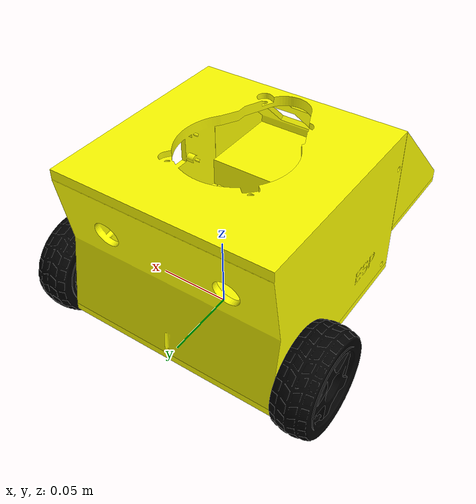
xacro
<?xml version="1.0"?>
<robot xmlns:xacro="http://wiki.ros.org/xacro" name="socks_bot">
  <xacro:arg name="hardware_plugin" default="gz_ros2_control/GazeboSystem"/>
  <xacro:property name="PI" value="3.141592653589793"/>
  <xacro:property name="HALF_PI" value="${PI/2}"/>

  <material name="yellow"><color rgba="1 1 0.0 1.0"/></material>
  <material name="black"><color rgba="0.01 0.01 0.01 1.0"/></material>
  <material name="red"><color rgba="0.5 0.0 0.0 1.0"/></material>

  <xacro:include filename="$(find socks_bot)/description/wheel.xacro"/>

  <link name="base_link">
    <!-- База -->
    <visual>
      <origin xyz="0 0 0" rpy="0 0 0"/>
      <geometry>
        <mesh filename="package://socks_bot/description/meshes/base.stl"/>
      </geometry>
      <material name="yellow"/>
    </visual>

    <!-- Мотор -->
    <visual>
      <origin xyz="0.06 0.045 ${(22.5/2+5)/1000}" rpy="${HALF_PI} 0 -${HALF_PI}"/>
      <geometry>
        <mesh filename="tt_motor.stl" scale="1 1 1"/>
      </geometry>
      <material name="yellow"/>
    </visual>

    <visual>
      <origin xyz="-0.06 0.045 ${(22.5/2+5)/1000}" rpy="${HALF_PI} 0 -${HALF_PI}"/>
      <geometry>
        <mesh filename="tt_motor.stl" scale="1 1 1"/>
      </geometry>
      <material name="yellow"/>
    </visual>

    <visual>
      <origin xyz="0 -0.03 0.105" rpy="0 0 -${HALF_PI}"/>
      <geometry>
        <mesh filename="cover.stl" scale="1 1 1"/>
      </geometry>
      <material name="yellow"/>
    </visual>

    <visual>
      <origin xyz="-0.0365 -0.128 0.068" rpy="${HALF_PI/2} 0 0"/>
      <geometry>
        <mesh filename="raspberry_holder.stl" scale="1 1 1"/>
      </geometry>
      <material name="yellow"/>
    </visual>

    <visual>
      <origin xyz="0 -0.125 0.0327" rpy="0 0 0"/>
      <geometry>
        <mesh filename="wheel_holder.stl" scale="1 1 1"/>
      </geometry>
      <material name="yellow"/>
    </visual>

    <inertial>
      <mass value="1.5"/>
      <inertia ixx="1" ixy="0.0" ixz="0.0" iyy="1" iyz="0.0" izz="1"/>
    </inertial>

    <!-- Коллизия -->
    <collision>
      <origin xyz="0 0 0" rpy="0 0 0"/>
      <geometry>
        <mesh filename="package://socks_bot/description/meshes/base.stl"/>
      </geometry>
    </collision>
  </link>

  <xacro:wheel side="left"
               parent="base_link"/>

  <xacro:wheel side="right"
               parent="base_link"/>

  <link name="caster_wheel">
    <visual>
      <origin xyz="0 0 0" rpy="0 0 ${PI}"/>
      <geometry>
        <mesh filename="caster_wheel.stl" scale="1 1 1"/>
      </geometry>
      <material name="red"/>
    </visual>
    <collision>
      <origin xyz="0 0 0" rpy="0 0 ${PI}"/>
      <geometry>
        <mesh filename="caster_wheel.stl" scale="1 1 1"/>
      </geometry>
    </collision>
    <inertial>
      <mass value="0.1"/>
      <inertia ixx="1" ixy="0.0" ixz="0.0" iyy="1" iyz="0.0" izz="1"/>
    </inertial>
  </link>

  <joint name="caster_wheel_joint" type="fixed">
    <parent link="base_link"/>
    <child link="caster_wheel"/>
    <origin xyz="0 -0.14 -0.0" rpy="0 0 0"/>
    <axis xyz="1 0 0"/>
  </joint>

  <ros2_control name="MyRobotSystem" type="system">
    <hardware>
	    <plugin>$(arg hardware_plugin)</plugin>
	    <param name="wheel_radius">0.0325</param>
	    <param name="wheel_separation">0.175</param>
    </hardware>
    <joint name="wheel_left_joint">
      <command_interface name="velocity"/>
      <state_interface name="position"/>
      <state_interface name="velocity"/>
    </joint>
    <joint name="wheel_right_joint">
      <command_interface name="velocity"/>
      <state_interface name="position"/>
      <state_interface name="velocity"/>
    </joint>
  </ros2_control>
</robot>

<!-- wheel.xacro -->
<robot xmlns:xacro="http://wiki.ros.org/xacro">
<xacro:macro name="wheel" params="side parent">
  <xacro:property name="PI" value="3.141592653589793"/>
  <xacro:property name="HALF_PI" value="${PI/2}"/>
  <xacro:if value="${side == 'left'}">
    <xacro:property name="sign" value="-1"/>
  </xacro:if>
  <xacro:if value="${side == 'right'}">
    <xacro:property name="sign" value="1"/>
  </xacro:if>
  <link name="wheel_${side}_link">
    <visual>
      <origin xyz="0 0 0" rpy="0 0 0"/>
      <geometry>
        <mesh filename="wheel.stl"/>
      </geometry>
      <material name="black"/>
    </visual>
    <collision>
      <origin xyz="0 0 0" rpy="0 0 0"/>
      <geometry>
        <mesh filename="wheel.stl"/>
      </geometry>
    </collision>
    <inertial>
      <mass value="0.3"/>
      <inertia ixx="1" ixy="0.0" ixz="0.0" iyy="1" iyz="0.0" izz="1"/>
    </inertial>
  </link>

  <joint name="wheel_${side}_joint" type="continuous">
    <parent link="${parent}"/>
    <child link="wheel_${side}_link"/>
    <origin xyz="${sign*0.102} 0.034 ${(22.5/2+5)/1000}" rpy="0 ${sign*HALF_PI} 0"/>
    <axis xyz="0 0 1"/>
  </joint>
</xacro:macro>
</robot>
